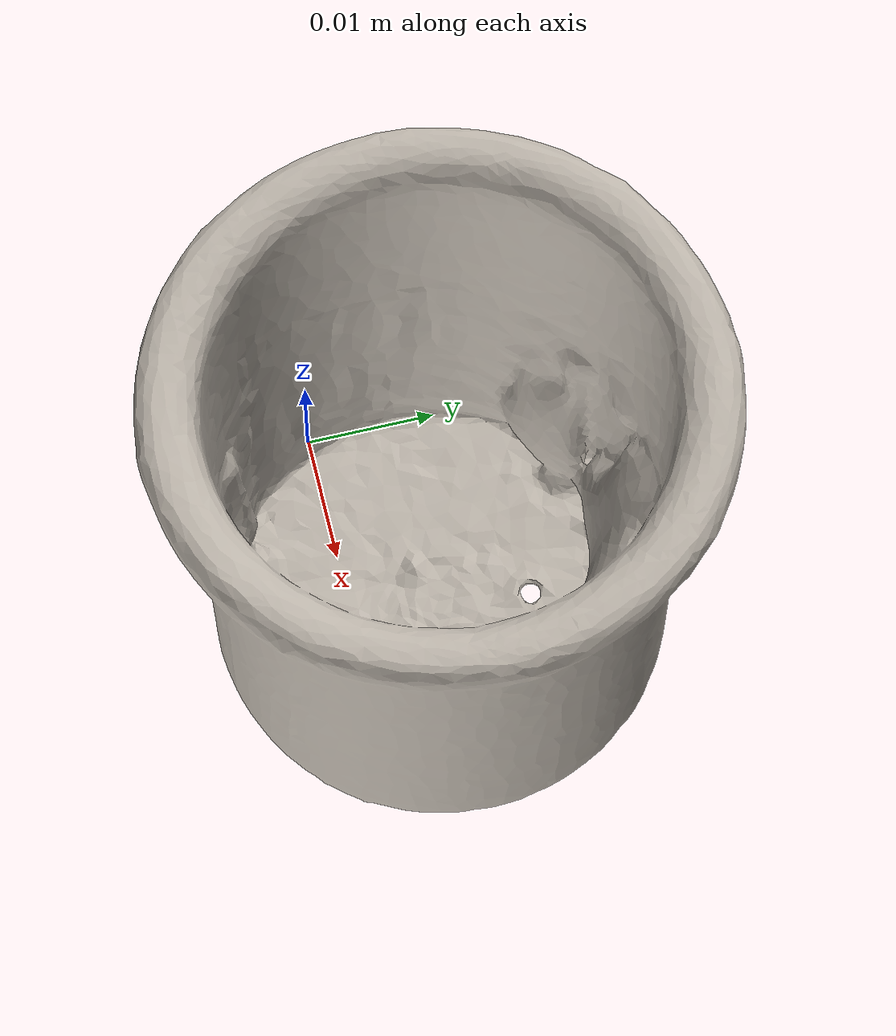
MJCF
<mujoco model="bread">
  <asset>
    <mesh file="nontextured.stl" name="obj_mesh" scale="0.8 0.8 0.8"/>
    <texture file="../../../../../textures/bread.png" type="2d" name="tex-bread" />
    <material name="bread" reflectance="0.7" texrepeat="15 15" texture="tex-bread" texuniform="true"/>
  </asset>
  <worldbody>
    <body>
      <body name="collision">
        <geom pos="0.031891 0.045398499999999994 -0.030005" mesh="obj_mesh" type="mesh" solimp="0.998 0.998 0.001" solref="0.001 1" density="50" friction="0.95 0.3 0.1"  material="bread" group="1" condim="4"/>
      </body>
      <body name="visual">
        <geom pos="0.031891 0.045398499999999994 -0.030005" mesh="obj_mesh" type="mesh" material="bread"  conaffinity="0" contype="0"  group="0" mass="0.0001"/>
        <geom pos="0.031891 0.045398499999999994 -0.030005" mesh="obj_mesh" type="mesh" material="bread"  conaffinity="0" contype="0"  group="1" mass="0.0001"/>
      </body>
      <site rgba="0 0 0 0" size="0.005" pos="0 0 -0.030757999999999997" name="bottom_site"/>
      <site rgba="0 0 0 0" size="0.005" pos="0 0 0.030757999999999997" name="top_site"/>
      <site rgba="0 0 0 0" size="0.005" pos="0.028543000000000002 0.0287125 0.030757999999999997" name="horizontal_radius_site"/>
    </body>
  </worldbody>
</mujoco>
